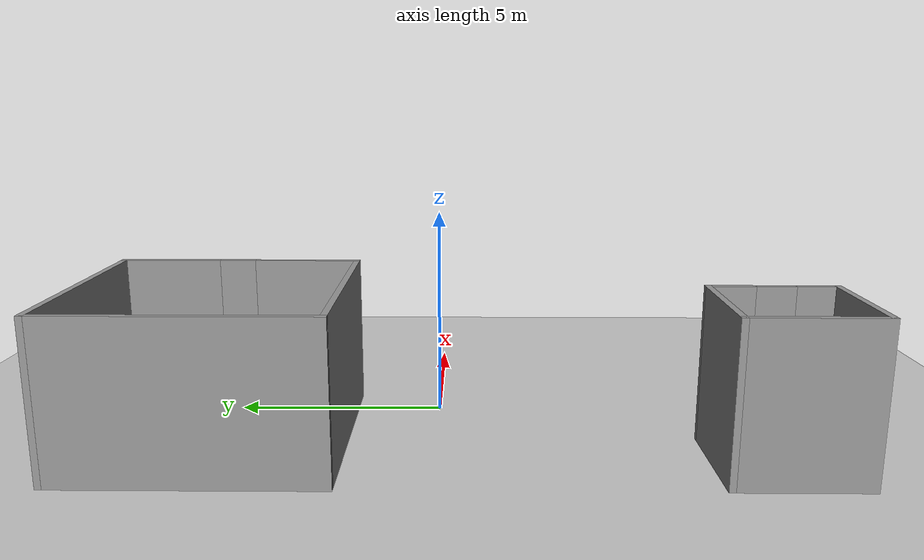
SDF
<sdf version="1.7">
 <world name="world">
  <gravity>0 0 -9.8</gravity>
  <physics name="default_physics" default="0" type="ode">
   <max_step_size>0.001</max_step_size>
   <real_time_factor>1</real_time_factor>
   <real_time_update_rate>1000</real_time_update_rate>
  </physics>
  <scene><ambient>0.6 0.6 0.6 1</ambient><background>0.4 0.4 0.4 1</background><shadows>0</shadows></scene>
  <light name="sun" type="directional">
   <pose>0 0 10 0 -0 0</pose>
   <diffuse>0.8 0.8 0.8 1</diffuse>
   <specular>0.2 0.2 0.2 1</specular>
   <attenuation>
    <range>1000</range>
    <constant>0.9</constant>
    <linear>0.01</linear>
    <quadratic>0.001</quadratic>
   </attenuation>
   <direction>-0.5 0.1 -0.9</direction>
   <spot><inner_angle>0</inner_angle><outer_angle>0</outer_angle><falloff>0</falloff></spot>
  </light>
  <model name="ground_plane">
   <static>1</static>
   <link name="link">
    <collision name="collision">
     <geometry><plane><normal>0 0 1</normal><size>100 100</size></plane></geometry>
     <surface>
      <contact><collide_bitmask>65535</collide_bitmask></contact>
      <friction><ode><mu>100</mu><mu2>50</mu2></ode></friction>
     </surface>
    </collision>
    <visual name="visual">
     <cast_shadows>0</cast_shadows>
     <geometry><plane><normal>0 0 1</normal><size>100 100</size></plane></geometry>
     <material>
      <script><uri>file://media/materials/scripts/gazebo.material</uri><name>Gazebo/Grey</name></script>
     </material>
    </visual>
   </link>
   <pose>0 0 -0.1 0 -0 0</pose>
  </model>
  <model name="CGMClassic_1"/>
  <model name="StorageRack_1"/>
  <model name="CGMClassic_2"/>
  <model name="Chair_1"/>
  <model name="Chair_2"/>
  <model name="Scrubs_1"/>
  <model name="Scrubs_2"/>
  <model name="PatientWheelChair_1"/>
  <model name="Scrubs_3"/>
  <model name="WhiteChipChair_1"/>
  <model name="TrolleyBed_1"/>
  <model name="SurgicalTrolley_1"/>
  <model name="CGMClassic_3"/>
  <model name="PotatoChipChair_2"/>
  <model name="PotatoChipChair_3"/>
  <model name="PotatoChipChair_4"/>
  <model name="PotatoChipChair_5"/>
  <model name="PotatoChipChair_6"/>
  <model name="PotatoChipChair_7"/>
  <model name="PotatoChipChair_8"/>
  <model name="VisitorKidSit_1"/>
  <model name="FemaleVisitorSit_1"/>
  <model name="AdjTable_1"/>
  <model name="PotatoChipChair_9"/>
  <model name="PotatoChipChair_10"/>
  <model name="PotatoChipChair_11"/>
  <model name="PotatoChipChair_12"/>
  <model name="PotatoChipChair_13"/>
  <model name="PotatoChipChair_14"/>
  <model name="PotatoChipChair_15"/>
  <model name="PotatoChipChair_16"/>
  <model name="MopCart3_1"/>
  <model name="MaleVisitorSit_1"/>
  <model name="Drawer_1"/>
  <model name="Drawer_2"/>
  <model name="OfficeChairBlack_1"/>
  <model name="OfficeChairBlack_2"/>
  <model name="AdjTable_2"/>
  <model name="Drawer_3"/>
  <model name="Drawer_4"/>
  <model name="ElderLadyPatient_1"/>
  <model name="ElderLadyPatient_2"/>
  <model name="CGMClassic_4"/>
  <model name="InstrumentCart1_1"/>
  <model name="ElderMalePatient_1"/>
  <model name="InstrumentCart2_1"/>
  <model name="InstrumentCart2_2"/>
  <model name="MetalCabinet_1"/>
  <model name="MetalCabinet_2"/>
  <model name="CGMClassic_5"/>
  <model name="CGMClassic_6"/>
  <model name="BedTable_1"/>
  <model name="BedTable_2"/>
  <model name="BedsideTable_1"/>
  <model name="AnesthesiaMachine_1"/>
  <model name="TrolleyBedPatient_1"/>
  <model name="Scrubs_4"/>
  <model name="Shower_1"/>
  <model name="Shower_2"/>
  <model name="SurgicalTrolley_2"/>
  <model name="SurgicalTrolley_3"/>
  <model name="SurgicalTrolleyMed_1"/>
  <model name="Scrubs_5"/>
  <model name="InstrumentCart1_2"/>
  <model name="InstrumentCart2_3"/>
  <model name="StorageRackCovered_1"/>
  <model name="StorageRack_2"/>
  <model name="KitchenSink_1"/>
  <model name="KitchenSink_2"/>
  <model name="Toilet_1"/>
  <model name="Toilet_2"/>
  <model name="Toilet_3"/>
  <model name="Toilet_4"/>
  <model name="Toilet_5"/>
  <model name="Toilet_6"/>
  <model name="CGMClassic_7"/>
  <model name="CGMClassic_8"/>
  <model name="MetalCabinet_3"/>
  <model name="MetalCabinet_4"/>
  <model name="ParkingTrolleyMin_1"/>
  <model name="PatientFSit_1"/>
  <model name="MaleVisitorOnPhone_1"/>
  <model name="FemaleVisitor_1"/>
  <model name="MaleVisitorSit_2"/>
  <model name="Scrubs_6"/>
  <model name="MalePatientBed_1"/>
  <model name="CGMClassic_9"/>
  <model name="StorageRackCoverOpen_1"/>
  <model name="StorageRack_3"/>
  <model name="StorageRack_4"/>
  <model name="StorageRackCovered_2"/>
  <model name="FemaleVisitorSit_2"/>
  <model name="InstrumentCart1_3"/>
  <model name="ParkingTrolleyMax_1"/>
  <model name="ElderMalePatient_2"/>
  <model name="Chair_3"/>
  <model name="XRayMachine_1"/>
  <model name="IVStand_1"/>
  <model name="BloodPressureMonitor_1"/>
  <model name="IVStand_2"/>
  <model name="BMWCart_1"/>
  <model name="Scrubs_7"/>
  <model name="BPCart_1"/>
  <model name="BPCart_2"/>
  <model name="BPCart_3"/>
  <model name="BPCart_4"/>
  <model name="VendingMachine_1"/>
  <model name="VendingMachine_2"/>
  <model name="Chair_4"/>
  <magnetic_field>6e-06 2.3e-05 -4.2e-05</magnetic_field>
  <atmosphere type="adiabatic"/>
  <spherical_coordinates>
   <surface_model>EARTH_WGS84</surface_model>
   <latitude_deg>0</latitude_deg>
   <longitude_deg>0</longitude_deg>
   <elevation>0</elevation>
   <heading_deg>0</heading_deg>
  </spherical_coordinates>
  <model name="theatre_feet_model">
   <pose>-2.0534 5.28667 0 0 -0 0</pose>
   <link name="Wall_1">
    <collision name="Wall_1_Collision">
     <geometry><box><size>6.096 0.15 3.658</size></box></geometry>
     <pose>0 0 1.829 0 -0 0</pose>
    </collision>
    <visual name="Wall_1_Visual">
     <pose>0 0 1.829 0 -0 0</pose>
     <geometry><box><size>6.096 0.15 3.658</size></box></geometry>
     <material>
      <script><uri>file://media/materials/scripts/gazebo.material</uri><name>Gazebo/Grey</name></script>
      <ambient>1 1 1 1</ambient>
     </material>
     <meta><layer>0</layer></meta>
    </visual>
    <pose>0 2.7895 0 0 -0 0</pose>
   </link>
   <link name="Wall_3">
    <pose>2.973 -0.1835 0 0 -0 -1.5708</pose>
    <visual name="Wall_3_Visual_0">
     <pose>-1.78092 0 1.829 0 -0 0</pose>
     <geometry><box><size>2.53417 0.15 3.658</size></box></geometry>
     <material>
      <script><uri>file://media/materials/scripts/gazebo.material</uri><name>Gazebo/Grey</name></script>
      <ambient>1 1 1 1</ambient>
     </material>
     <meta><layer>0</layer></meta>
    </visual>
    <collision name="Wall_3_Collision_0">
     <geometry><box><size>2.53417 0.15 3.658</size></box></geometry>
     <pose>-1.78092 0 1.829 0 -0 0</pose>
    </collision>
    <visual name="Wall_3_Visual_1">
     <pose>1.71708 0 1.829 0 -0 0</pose>
     <geometry><box><size>2.66183 0.15 3.658</size></box></geometry>
     <material>
      <script><uri>file://media/materials/scripts/gazebo.material</uri><name>Gazebo/Grey</name></script>
      <ambient>1 1 1 1</ambient>
     </material>
     <meta><layer>0</layer></meta>
    </visual>
    <collision name="Wall_3_Collision_1">
     <geometry><box><size>2.66183 0.15 3.658</size></box></geometry>
     <pose>1.71708 0 1.829 0 -0 0</pose>
    </collision>
    <visual name="Wall_3_Visual_2">
     <pose>-0.063831 0 0 0 -0 0</pose>
     <geometry><box><size>0.9 0.15 0</size></box></geometry>
     <material>
      <script><uri>file://media/materials/scripts/gazebo.material</uri><name>Gazebo/Grey</name></script>
      <ambient>1 1 1 1</ambient>
     </material>
     <meta><layer>0</layer></meta>
    </visual>
    <collision name="Wall_3_Collision_2">
     <geometry><box><size>0.9 0.15 0</size></box></geometry>
     <pose>-0.063831 0 0 0 -0 0</pose>
    </collision>
    <visual name="Wall_3_Visual_3">
     <pose>-0.063831 0 2.829 0 -0 0</pose>
     <geometry><box><size>0.9 0.15 1.658</size></box></geometry>
     <material>
      <script><uri>file://media/materials/scripts/gazebo.material</uri><name>Gazebo/Grey</name></script>
      <ambient>1 1 1 1</ambient>
     </material>
     <meta><layer>0</layer></meta>
    </visual>
    <collision name="Wall_3_Collision_3">
     <geometry><box><size>0.9 0.15 1.658</size></box></geometry>
     <pose>-0.063831 0 2.829 0 -0 0</pose>
    </collision>
   </link>
   <link name="Wall_5">
    <collision name="Wall_5_Collision">
     <geometry><box><size>6.096 0.15 3.658</size></box></geometry>
     <pose>0 0 1.829 0 -0 0</pose>
    </collision>
    <visual name="Wall_5_Visual">
     <pose>0 0 1.829 0 -0 0</pose>
     <geometry><box><size>6.096 0.15 3.658</size></box></geometry>
     <material>
      <script><uri>file://media/materials/scripts/gazebo.material</uri><name>Gazebo/Grey</name></script>
      <ambient>1 1 1 1</ambient>
     </material>
     <meta><layer>0</layer></meta>
    </visual>
    <pose>0 -3.1565 0 0 -0 0</pose>
   </link>
   <link name="Wall_7">
    <collision name="Wall_7_Collision">
     <geometry><box><size>6.096 0.15 3.658</size></box></geometry>
     <pose>0 0 1.829 0 -0 0</pose>
    </collision>
    <visual name="Wall_7_Visual">
     <pose>0 0 1.829 0 -0 0</pose>
     <geometry><box><size>6.096 0.15 3.658</size></box></geometry>
     <material>
      <script><uri>file://media/materials/scripts/gazebo.material</uri><name>Gazebo/Grey</name></script>
      <ambient>1 1 1 1</ambient>
     </material>
     <meta><layer>0</layer></meta>
    </visual>
    <pose>-2.973 -0.1835 0 0 -0 -1.5708</pose>
   </link>
   <static>1</static>
  </model>
  <model name="endoscopy_feet_model">
   <pose>-3.55452 -7.51701 0 0 -0 0</pose>
   <link name="Wall_0">
    <pose>1.449 -0 0 0 -0 1.5708</pose>
    <visual name="Wall_0_Visual_0">
     <pose>-1.01667 0 1.829 0 -0 0</pose>
     <geometry><box><size>1.01467 0.15 3.658</size></box></geometry>
     <material>
      <script><uri>file://media/materials/scripts/gazebo.material</uri><name>Gazebo/Grey</name></script>
      <ambient>1 1 1 1</ambient>
     </material>
     <meta><layer>0</layer></meta>
    </visual>
    <collision name="Wall_0_Collision_0">
     <geometry><box><size>1.01467 0.15 3.658</size></box></geometry>
     <pose>-1.01667 0 1.829 0 -0 0</pose>
    </collision>
    <visual name="Wall_0_Visual_1">
     <pose>0.957333 0 1.829 0 -0 0</pose>
     <geometry><box><size>1.13333 0.15 3.658</size></box></geometry>
     <material>
      <script><uri>file://media/materials/scripts/gazebo.material</uri><name>Gazebo/Grey</name></script>
      <ambient>1 1 1 1</ambient>
     </material>
     <meta><layer>0</layer></meta>
    </visual>
    <collision name="Wall_0_Collision_1">
     <geometry><box><size>1.13333 0.15 3.658</size></box></geometry>
     <pose>0.957333 0 1.829 0 -0 0</pose>
    </collision>
    <visual name="Wall_0_Visual_2">
     <pose>-0.059334 0 0 0 -0 0</pose>
     <geometry><box><size>0.9 0.15 0</size></box></geometry>
     <material>
      <script><uri>file://media/materials/scripts/gazebo.material</uri><name>Gazebo/Grey</name></script>
      <ambient>1 1 1 1</ambient>
     </material>
     <meta><layer>0</layer></meta>
    </visual>
    <collision name="Wall_0_Collision_2">
     <geometry><box><size>0.9 0.15 0</size></box></geometry>
     <pose>-0.059334 0 0 0 -0 0</pose>
    </collision>
    <visual name="Wall_0_Visual_3">
     <pose>-0.059334 0 2.829 0 -0 0</pose>
     <geometry><box><size>0.9 0.15 1.658</size></box></geometry>
     <material>
      <script><uri>file://media/materials/scripts/gazebo.material</uri><name>Gazebo/Grey</name></script>
      <ambient>1 1 1 1</ambient>
     </material>
     <meta><layer>0</layer></meta>
    </visual>
    <collision name="Wall_0_Collision_3">
     <geometry><box><size>0.9 0.15 1.658</size></box></geometry>
     <pose>-0.059334 0 2.829 0 -0 0</pose>
    </collision>
   </link>
   <link name="Wall_2">
    <collision name="Wall_2_Collision">
     <geometry><box><size>3.048 0.15 3.658</size></box></geometry>
     <pose>0 0 1.829 0 -0 0</pose>
    </collision>
    <visual name="Wall_2_Visual">
     <pose>0 0 1.829 0 -0 0</pose>
     <geometry><box><size>3.048 0.15 3.658</size></box></geometry>
     <material>
      <script><uri>file://media/materials/scripts/gazebo.material</uri><name>Gazebo/Grey</name></script>
      <ambient>1 1 1 1</ambient>
     </material>
     <meta><layer>0</layer></meta>
    </visual>
    <pose>0 1.449 0 0 -0 3.14159</pose>
   </link>
   <link name="Wall_4">
    <collision name="Wall_4_Collision">
     <geometry><box><size>3.048 0.15 3.658</size></box></geometry>
     <pose>0 0 1.829 0 -0 0</pose>
    </collision>
    <visual name="Wall_4_Visual">
     <pose>0 0 1.829 0 -0 0</pose>
     <geometry><box><size>3.048 0.15 3.658</size></box></geometry>
     <material>
      <script><uri>file://media/materials/scripts/gazebo.material</uri><name>Gazebo/Grey</name></script>
      <ambient>1 1 1 1</ambient>
     </material>
     <meta><layer>0</layer></meta>
    </visual>
    <pose>-1.449 -0 0 0 -0 -1.5708</pose>
   </link>
   <link name="Wall_6">
    <collision name="Wall_6_Collision">
     <geometry><box><size>3.048 0.15 3.658</size></box></geometry>
     <pose>0 0 1.829 0 -0 0</pose>
    </collision>
    <visual name="Wall_6_Visual">
     <pose>0 0 1.829 0 -0 0</pose>
     <geometry><box><size>3.048 0.15 3.658</size></box></geometry>
     <material>
      <script><uri>file://media/materials/scripts/gazebo.material</uri><name>Gazebo/Grey</name></script>
      <ambient>1 1 1 1</ambient>
     </material>
     <meta><layer>0</layer></meta>
    </visual>
    <pose>0 -1.449 0 0 -0 0</pose>
   </link>
   <static>1</static>
  </model>
 </world>
</sdf>
